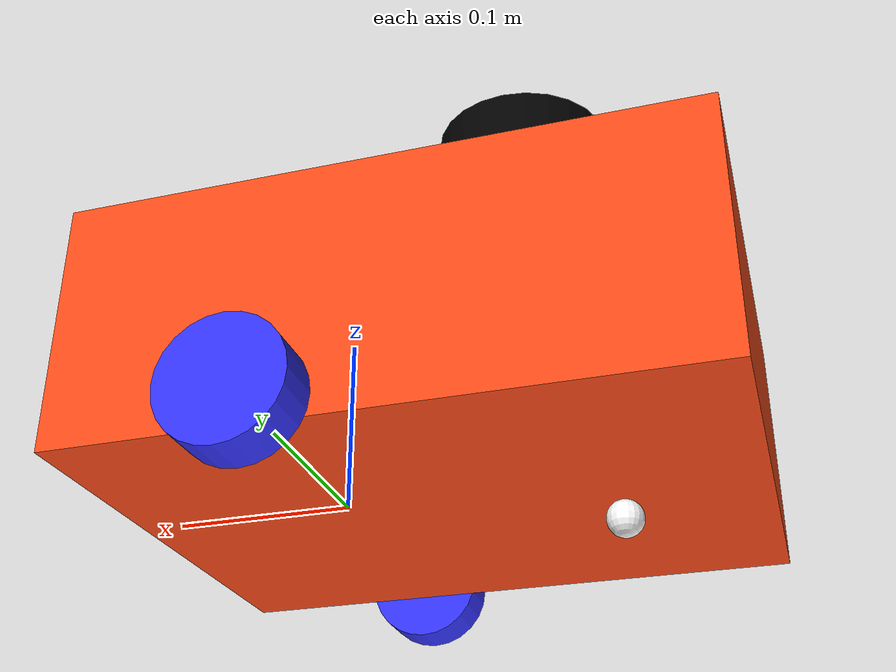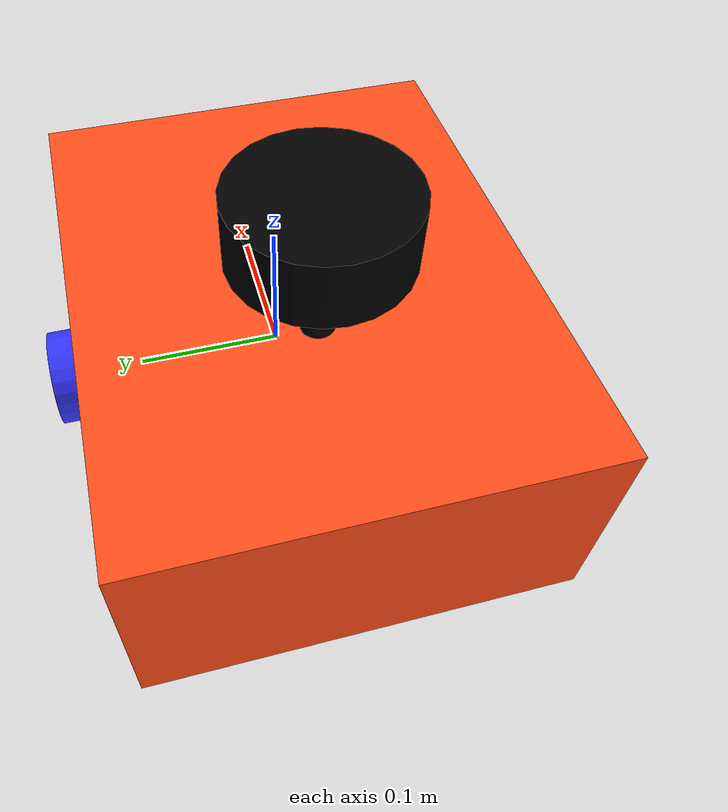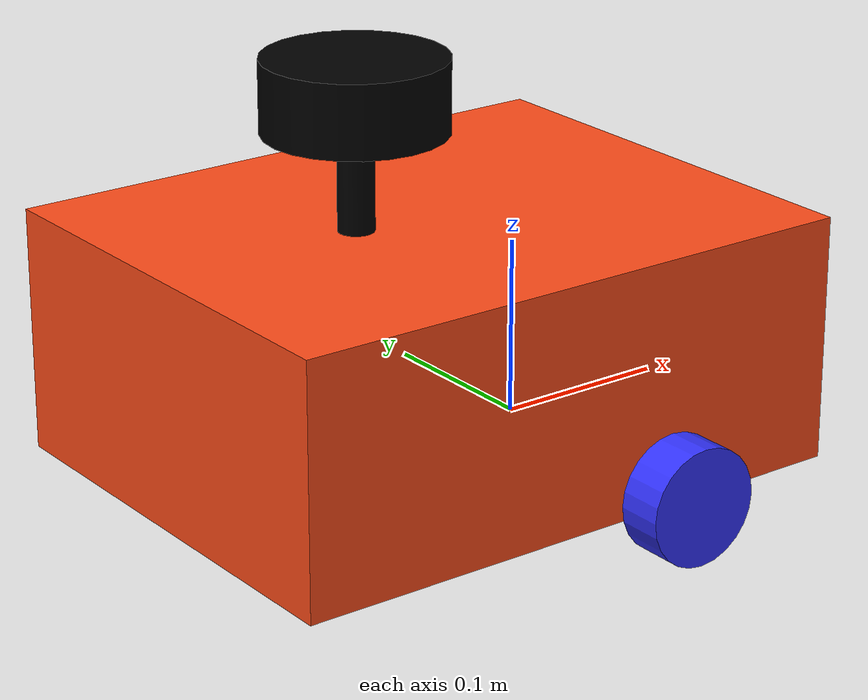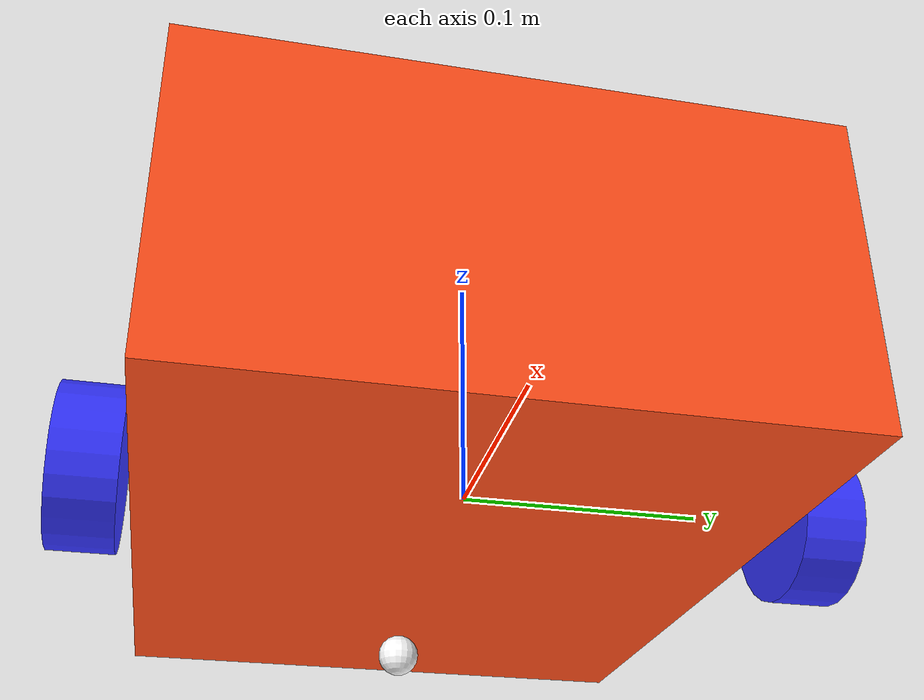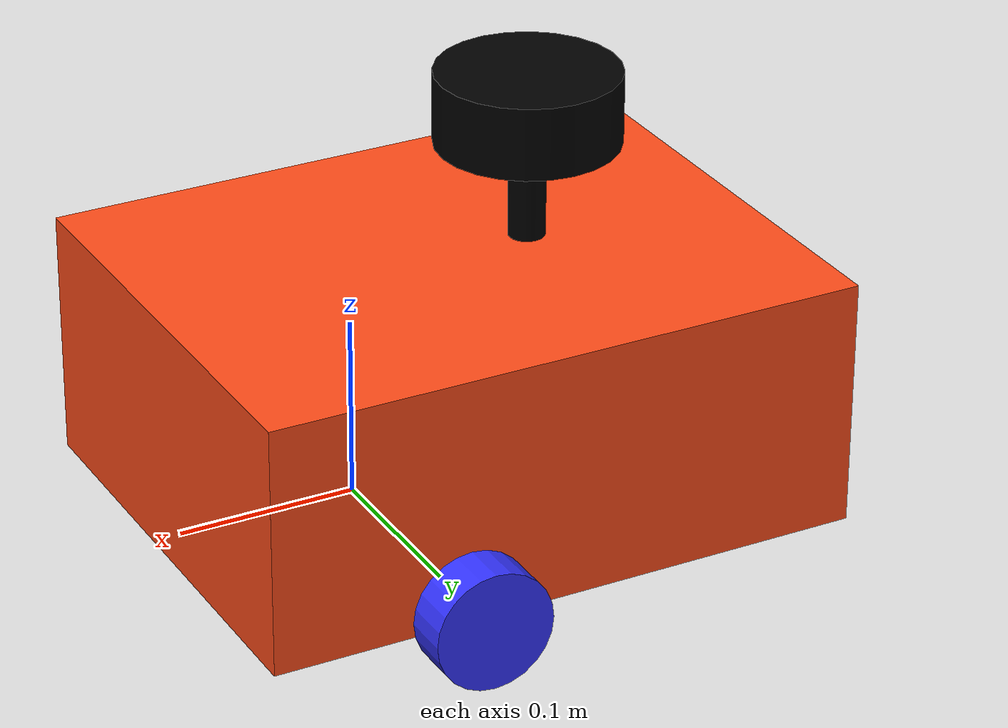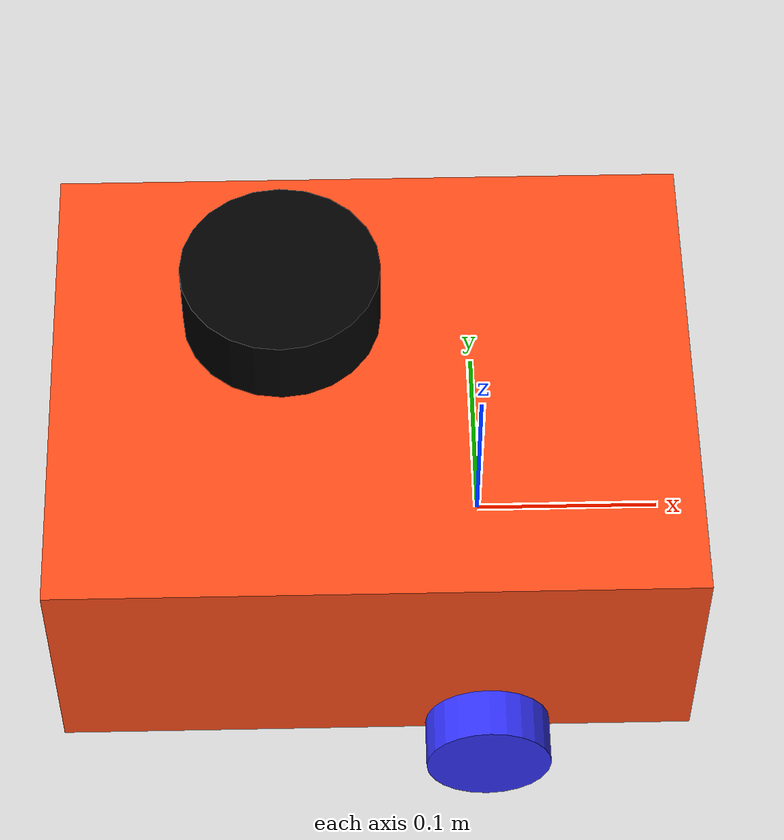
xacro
<?xml version="1.0"?>
<robot xmlns:xacro="http://www.ros.org/wiki/xacro"  name="robot">

    <!-- use enable sim time attribute to true -->
    <xacro:include filename="robot_core.xacro" />
    <xacro:include filename="lidar.xacro" />
    <xacro:include filename="depth_camera.xacro" />

    <!-- CONTROL ros2 -->
    <!-- sudo apt install ros-humble-ros2-control -->
    <!-- sudo apt install ros-humble-ros2-controllers -->
    <!-- sudo apt install ros-humble-gazebo-ros2-control -->
    <xacro:include filename="ros2_control.xacro" />

    <!-- SELECT ROS2_CONTROL VS GAZEBO_CONTROL, do manually, tutorial coded for true/false launch argument -->

</robot>

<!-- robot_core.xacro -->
<robot xmlns:xacro="http://www.ros.org/wiki/xacro" >

    <!-- import the supporting file -->
    <xacro:include filename="inertial_macros.xacro"/>

    <!-- 1 setup colours: better to setup in a file which can be included in here -->

    <material name="white">
        <color rgba="1 1 1 1" />
    </material>

    <material name="orange">
        <color rgba="1 0.3 0.1 1"/>
    </material>

    <material name="blue">
        <color rgba="0.2 0.2 1 1"/>
    </material>

    <material name="black">
        <color rgba="0 0 0 1"/>
    </material>

    <material name="red">
        <color rgba="1 0 0 1"/>
    </material>

    <!-- define all variables for the chassis -->

    <xacro:property name="chassis_length" value="0.335"/>
    <xacro:property name="chassis_width" value="0.265"/>
    <xacro:property name="chassis_height" value="0.138"/>
    <xacro:property name="chassis_mass" value="1.0"/>
    <xacro:property name="wheel_radius" value="0.033"/>
    <xacro:property name="wheel_thickness" value="0.026"/>
    <xacro:property name="wheel_mass" value="0.05"/>
    <xacro:property name="wheel_offset_x" value="0.226"/>
    <xacro:property name="wheel_offset_y" value="0.1485"/>
    <xacro:property name="wheel_offset_z" value="0.01"/>
    <xacro:property name="caster_wheel_radius" value="0.01"/>
    <xacro:property name="caster_wheel_mass" value="0.01"/>
    <xacro:property name="caster_wheel_offset_x" value="0.075"/>
    <xacro:property name="caster_wheel_offset_z" value="${wheel_offset_z - wheel_radius + caster_wheel_radius}"/>

    <!-- 2 start creating all the links, first link called base link  -->
    <!-- URDF FILE USES DIMENSIONS IN METRES -->
    <!-- BASE LINK -->

    <link name="base_link">

    </link>

    <!-- BASE_FOOTPRINT LINK -->

    <joint name="base_footprint_joint" type="fixed">
        <parent link="base_link"/>
        <child link="base_footprint"/>
        <origin xyz="0 0 0" rpy="0 0 0"/>
    </joint>

    <link name="base_footprint">

    </link>

    <!-- CHASSIS LINK -->

    <joint name="chassis_joint" type="fixed">
        <parent link="base_link"/>
        <child link="chassis"/>
        <origin xyz="${-wheel_offset_x} 0 ${-wheel_offset_z}"/>
    </joint>

    <link name="chassis">
        <visual>
            <origin xyz="${chassis_length/2} 0 ${chassis_height/2}"/>
            <geometry>
                <box size="${chassis_length} ${chassis_width} ${chassis_height}"/>
            </geometry>
            <material name="orange"/>
        </visual>
        <collision>
            <origin xyz="${chassis_length/2} 0 ${chassis_height/2}"/>
            <geometry>
                <box size="${chassis_length} ${chassis_width} ${chassis_height}"/>
            </geometry>
        </collision>
        <xacro:inertial_box mass="0.5" x="${chassis_length}" y="${chassis_width}" z="${chassis_height}">
            <origin xyz="${chassis_length/2} 0 ${chassis_height/2}" rpy="0 0 0"/>
        </xacro:inertial_box>
    </link>

    <!-- add gazebo tag for every visual tag -->
    <gazebo reference="chassis">
        <material>Gazebo/Orange</material>
    </gazebo>

    <!-- LEFT WHEEL LINK -->

    <joint name="left_wheel_joint" type="continuous">
        <parent link="base_link"/>
        <child link="left_wheel"/>
        <origin xyz="0 ${wheel_offset_y} 0" rpy="-${pi/2} 0 0" />
        <axis xyz="0 0 1"/>
    </joint>

    <link name="left_wheel">
        <visual>
            <geometry>
                <cylinder radius="${wheel_radius}" length="${wheel_thickness}"/>
            </geometry>
            <material name="blue"/>
        </visual>
        <collision>
            <geometry>
                <sphere radius="${wheel_radius}"/>
            </geometry>
        </collision>
        <xacro:inertial_cylinder mass="${wheel_mass}" length="${wheel_thickness}" radius="${wheel_radius}">
            <origin xyz="0 0 0" rpy="0 0 0"/>
        </xacro:inertial_cylinder>
    </link>

    <gazebo reference="left_wheel">
        <material>Gazebo/Blue</material>
    </gazebo>

    <!-- RIGHT WHEEL LINK -->

    <joint name="right_wheel_joint" type="continuous">
        <parent link="base_link"/>
        <child link="right_wheel"/>
        <origin xyz="0 ${-wheel_offset_y} 0" rpy="${pi/2} 0 0" />
        <axis xyz="0 0 -1"/>
    </joint>

    <link name="right_wheel">
        <visual>
            <geometry>
                <cylinder radius="${wheel_radius}" length="${wheel_thickness}"/>
            </geometry>
            <material name="blue"/>
        </visual>
        <collision>
            <geometry>
                <sphere radius="${wheel_radius}"/>
            </geometry>
        </collision>
        <xacro:inertial_cylinder mass="${wheel_mass}" length="${wheel_thickness}" radius="${wheel_radius}">
            <origin xyz="0 0 0" rpy="0 0 0"/>
        </xacro:inertial_cylinder>
    </link>

    <gazebo reference="right_wheel">
        <material>Gazebo/Blue</material>
    </gazebo>

    <!-- CASTER WHEEL LINK -->

    <joint name="caster_wheel_joint" type="fixed">
        <parent link="chassis"/>
        <child link="caster_wheel"/>
        <origin xyz="${caster_wheel_offset_x} 0 ${caster_wheel_offset_z}"/>
    </joint>

    <link name="caster_wheel">
        <visual>
            <geometry>
                <sphere radius="${caster_wheel_radius}"/>
            </geometry>
            <material name="white"/>
        </visual>
        <collision>
            <geometry>
                <sphere radius="${caster_wheel_radius}"/>
            </geometry>
        </collision>
        <xacro:inertial_sphere mass="${caster_wheel_mass}" radius="${caster_wheel_radius}">
            <origin xyz="0 0 0" rpy="0 0 0"/>
        </xacro:inertial_sphere>
    </link>

    <gazebo reference="caster_wheel">
        <material>Gazebo/White</material>

        <!-- gazebo friction coefficients -->
        <mu1 value="0.001"/>
        <mu2 value="0.001"/>
    </gazebo>

</robot>

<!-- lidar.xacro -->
<robot xmlns:xacro="http://www.ros.org/wiki/xacro" >

    <!-- 1st - ADD JOINT AND LINK FOR LIDAR -->

    <joint name="laser_joint" type="fixed">
        <parent link="chassis"/>
        <child link="laser_frame"/>
        <origin xyz="0.122 0 0.212" rpy="0 0 0"/>
    </joint>

    <link name="laser_frame">
        <visual>
            <geometry>
                <cylinder radius="0.05" length="0.04"/>
            </geometry>
            <material name="black"/>
        </visual>
        <visual>
            <origin xyz="0 0 -0.05"/>
            <geometry>
                <cylinder radius="0.01" length="0.1"/>
            </geometry>
            <material name="black"/>
        </visual>
        <collision>
            <geometry>
                <cylinder radius="0.05" length="0.04"/>
            </geometry>
        </collision>
        <xacro:inertial_cylinder mass="0.1" length="0.04" radius="0.05">
            <origin xyz="0 0 0" rpy="0 0 0"/>
        </xacro:inertial_cylinder>
    </link>

    <!-- gazebo references, simulated lidar data -->

    <gazebo reference="laser_frame">
        <material>Gazebo/Black</material>

        <sensor name="laser" type="ray">
            <pose> 0 0 0 0 0 0 </pose>
            <visualize>false</visualize>
            <!-- DISABLE LIDAR VISUAL WHEN USING CAMERA -->
            <update_rate>10</update_rate>
            <ray>
                <scan>
                    <horizontal>
                        <samples>360</samples>
                        <min_angle>-3.14</min_angle>
                        <max_angle>3.14</max_angle>
                    </horizontal>
                </scan>
                <range>
                    <min>0.3</min>
                    <max>12</max>
                </range>
            </ray>
            <plugin name="laser_controller" filename="libgazebo_ros_ray_sensor.so">
                <ros>
                    <argument>~/out:=scan</argument>
                </ros>

                <!-- THIS IS THE OUTPUT NODE FOR LASER POINT CLOUD -->
                <output_type>sensor_msgs/LaserScan</output_type>
                <frame_name>laser_frame</frame_name>
            </plugin>
        </sensor>
    </gazebo>

</robot>

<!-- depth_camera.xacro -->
<robot xmlns:xacro="http://www.ros.org/wiki/xacro" >

    <joint name="camera_joint" type="fixed">
        <parent link="chassis"/>
        <child link="camera_link"/>
        <origin xyz="0.305 0 0.08" rpy="0 0 0"/>
    </joint>

    <link name="camera_link">
        <visual>
            <geometry>
                <box size="0.010 0.03 0.03"/>
            </geometry>
            <material name="red"/>
        </visual>
    </link>

    <joint name="camera_optical_joint" type="fixed">
        <parent link="camera_link"/>
        <child link="camera_link_optical"/>
        <origin xyz="0 0 0" rpy="${-pi/2} 0 ${-pi/2}"/>
    </joint>

    <link name="camera_link_optical"></link>

    <gazebo reference="camera_link">
        <material>Gazebo/Red</material>

        <!-- ALL SAME, JUST CHANGE CAMERA TYPE TO DEPTH -->

        <sensor name="camera" type="depth">
            <pose> 0 0 0 0 0 0 </pose>
            <visualize>true</visualize>
            <update_rate>10</update_rate>
            <camera>
                <horizontal_fov>1.089</horizontal_fov>
                <image>

                    <!-- CHANGED FROM RGB TO BGR -->
                    <format>B8G8R8</format>
                    <width>640</width>
                    <height>480</height>
                </image>
                <clip>
                    <near>0.05</near>
                    <far>8.0</far>
                </clip>
            </camera>
            <plugin name="camera_controller" filename="libgazebo_ros_camera.so">
                <frame_name>camera_link_optical</frame_name>

                <!-- EXTRA PARAMS FOR THE PLUGIN, better simulate hardware.. -->
                <min_depth>0.1</min_depth>
                <max_depth>100.0</max_depth>
            </plugin>
        </sensor>
    </gazebo>

</robot>
